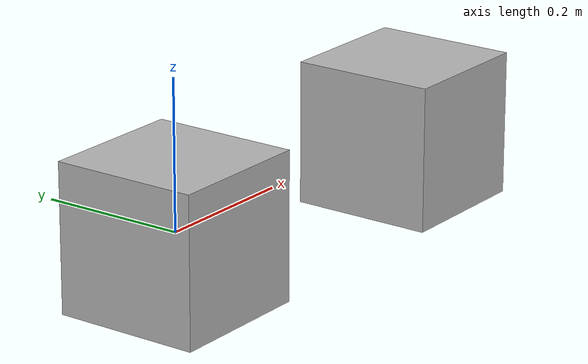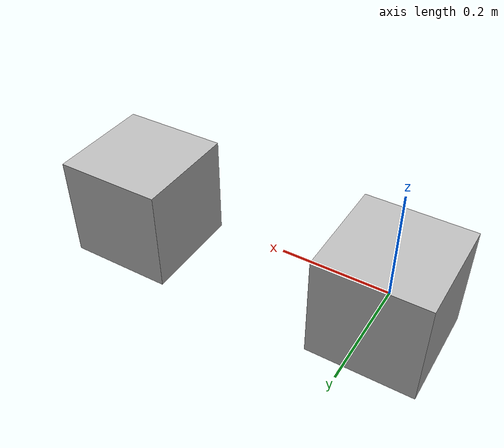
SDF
<sdf version='1.7'>

  <model name='mck'>
    <joint name='fixed' type='fixed'>
      <pose relative_to='__model__'>0 0 0 0 -0 0</pose>
      <parent>world</parent>
      <child>base_link</child>
    </joint>
    <link name='base_link'>
      <pose relative_to='fixed'>0 0 0 0 -0 0</pose>
      <inertial>
        <pose>0 0 0 0 -0 0</pose>
        <mass>1</mass>
        <inertia>
          <ixx>0.1</ixx>
          <ixy>0</ixy>
          <ixz>0</ixz>
          <iyy>0.1</iyy>
          <iyz>0</iyz>
          <izz>0.1</izz>
        </inertia>
      </inertial>
      <collision name='base_link_collision'>
        <pose>0 0 0 0 -0 0</pose>
        <geometry>
          <box>
            <size>0.2 0.2 0.2</size>
          </box>
        </geometry>
      </collision>
      <visual name='base_link_visual'>
        <pose>0 0 0 0 -0 0</pose>
        <geometry>
          <box>
            <size>0.2 0.2 0.2</size>
          </box>
        </geometry>
      </visual>
    </link>
    <joint name='first_spring_damper' type='prismatic'>
      <pose relative_to='base_link'>0.5 0 0 0 -0 0</pose>
      <parent>base_link</parent>
      <child>link_1</child>
      <axis>
        <xyz>1 0 0</xyz>
        <limit>
          <lower>-10</lower>
          <upper>10</upper>
          <effort>10000</effort>
          <velocity>5</velocity>
        </limit>
        <dynamics>
          <damping>0.5</damping>
          <friction>0</friction>
          <spring_reference>0.1</spring_reference>
          <spring_stiffness>10</spring_stiffness>
        </dynamics>
      </axis>
    </joint>
    <link name='link_1'>
      <pose relative_to='first_spring_damper'>0 0 0 0 -0 0</pose>
      <inertial>
        <pose>0 0 0 0 -0 0</pose>
        <mass>1</mass>
        <inertia>
          <ixx>0.1</ixx>
          <ixy>0</ixy>
          <ixz>0</ixz>
          <iyy>0.1</iyy>
          <iyz>0</iyz>
          <izz>0.1</izz>
        </inertia>
      </inertial>
      <collision name='link_1_collision'>
        <pose>0 0 0 0 -0 0</pose>
        <geometry>
          <box>
            <size>0.2 0.2 0.2</size>
          </box>
        </geometry>
      </collision>
      <visual name='link_1_visual'>
        <pose>0 0 0 0 -0 0</pose>
        <geometry>
          <box>
            <size>0.2 0.2 0.2</size>
          </box>
        </geometry>
      </visual>
    </link>
    <plugin name='joint_state_publisher' filename='libgazebo_ros_joint_state_publisher.so'>
      <joint_name>first_spring_damper</joint_name>
      <updateRate>100.0</updateRate>
      <alwaysOn>1</alwaysOn>
      <ros>
        <namespace>/joints</namespace>
        <remapping>joint_states:=joint_states_demo</remapping>
      </ros>
    </plugin>

  </model>
</sdf>
